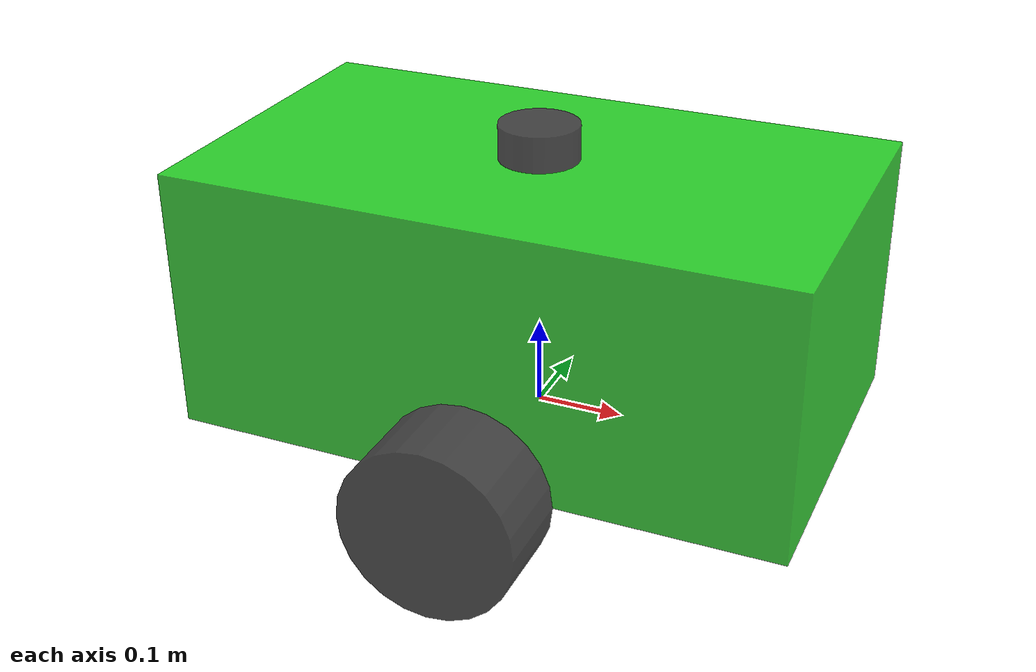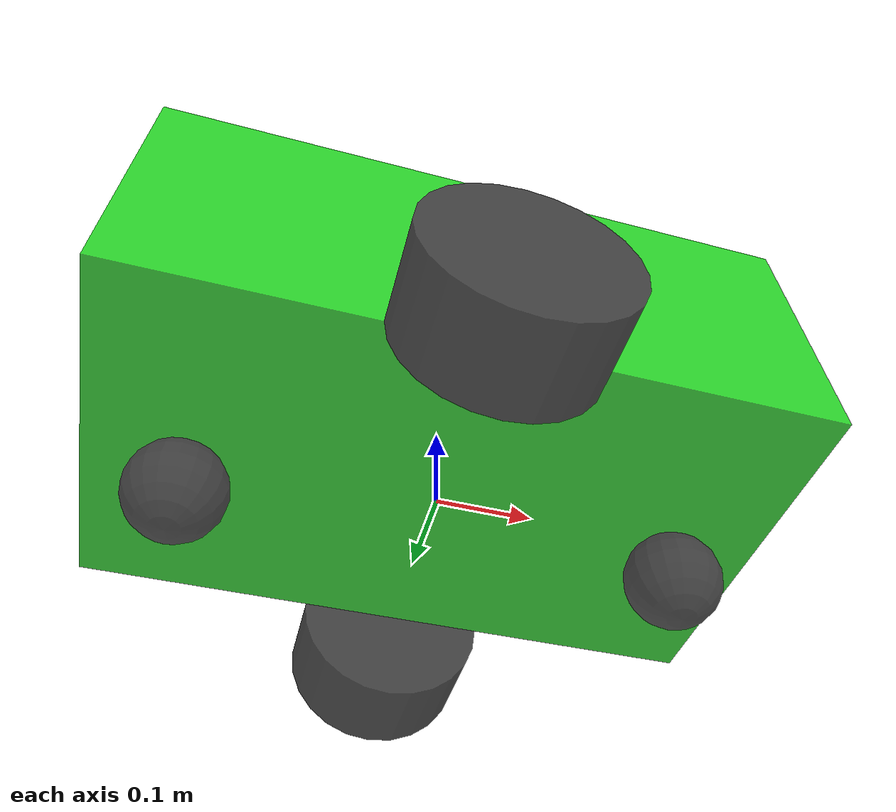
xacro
<?xml version="1.0"?>

<robot name="robot" xmlns:xacro="http://www.ros.org/wiki/xacro">

    <!-- Constants -->
    <xacro:property name="PI" value="3.1415926535897931"/>

    <!-- Dummy inertia -->
    <xacro:property name="dummy_inertia"                value="1e-09"/>

    <!-- Classic parameters -->
    <xacro:property name="body_mass"    value="10"/>
    <xacro:property name="body_lenght"  value="0.7"/>
    <xacro:property name="body_width"   value="0.4"/>
    <xacro:property name="body_height"  value="0.3"/>

    <!-- Front wheel parameters -->
    <xacro:property name="front_wheel_mass"     value="0.001"/>
    <xacro:property name="front_wheel_radius"   value="0.05"/>

    <!-- Rear wheel parameters -->
    <xacro:property name="rear_wheel_mass"      value="0.001"/>
    <xacro:property name="rear_wheel_radius"    value="0.05"/>

    <!-- Control wheels parameters -->
    <xacro:property name="control_wheel_mass"   value="2"/>
    <xacro:property name="control_wheel_radius" value="0.1"/>
    <xacro:property name="control_wheel_lenght" value="0.1"/>

    <!-- Frame position and orientation -->
    <xacro:property name="right_wheel_frame_position"       value="0 ${-body_width/2 - control_wheel_lenght/2} 0"/>
    <xacro:property name="right_wheel_frame_orientation"    value="${-PI/2} 0 0"/>
    <xacro:property name="left_wheel_frame_position"        value="0 ${body_width/2 + control_wheel_lenght/2} 0"/>
    <xacro:property name="left_wheel_frame_orientation"     value="${-PI/2} 0 0"/>
    <xacro:property name="front_wheel_frame_position"       value="${body_lenght/2 - 2 * front_wheel_radius} 0 ${-front_wheel_radius}"/>
    <xacro:property name="front_wheel_frame_orientation"    value="0 0 0"/>
    <xacro:property name="rear_wheel_frame_position"        value="${-body_lenght/2 + 2 * rear_wheel_radius} 0 ${-rear_wheel_radius}"/>
    <xacro:property name="rear_wheel_frame_orientation"     value="0 0 0"/>
    <xacro:property name="laser_frame_position"             value="0 0 ${body_height}"/>
    <xacro:property name="laser_frame_orientation"          value="0 0 0"/>
    <xacro:property name="imu_frame_position"               value="0 0 ${body_height/2}"/>
    <xacro:property name="imu_frame_orientation"            value="0 0 0"/>

    <!-- Import Rviz colors -->
    <xacro:include filename="$(find robot_pkg)/models/materials.xacro"/>

    <!-- Import Gazebo customization elemets -->
    <xacro:include filename="$(find robot_pkg)/models/robot_description.gazebo"/>

    <!-- Import laser sensor -->
    <xacro:include filename="$(find robot_pkg)/models/sensors/hokuyo.urdf.xacro"/>

    <!-- Chassis Link -->
    <link name="base_link">
        <collision>
            <origin xyz="0 0 ${body_height/2}" rpy="0 0 0"/>
            <geometry>
                <box size="${body_lenght} ${body_width} ${body_height}"/>
            </geometry>
        </collision>

        <visual>
            <origin xyz="0 0 ${body_height/2}" rpy="0 0 0"/>
            <geometry>
                <box size="${body_lenght} ${body_width} ${body_height}"/>
            </geometry>
            <material name="green"/>
        </visual>

        <inertial>
            <origin xyz="0 0 ${body_height/2}" rpy="0 0 0"/>
            <mass value="${body_mass}"/>
            <inertia
                ixx="${body_mass / 12 * (body_width*body_width + body_height*body_height)}" ixy="0.0" ixz="0.0"
                iyy="${body_mass / 12 * (body_height*body_height + body_lenght*body_lenght)}" iyz="0.0"
                izz="${body_mass / 12 * (body_lenght*body_lenght + body_width*body_width)}"/>
        </inertial>
    </link>

    <!-- IMU Link -->
    <link name="imu_link">
        <inertial>
        <mass value="0.001"/>
        <origin xyz="0 0 0" rpy="0 0 0"/>
        <inertia ixx="${dummy_inertia}" ixy="0.0" ixz="0.0" iyy="${dummy_inertia}" iyz="0.0" izz="${dummy_inertia}"/>
        </inertial>
    </link>
    <joint name="imu_joint" type="fixed">
        <parent link="base_link" />
        <child link="imu_link" />
        <origin xyz="${imu_frame_position}" rpy="${imu_frame_orientation}"/>
    </joint>

    <!-- Right wheel joint -->
    <joint name="right_wheel_joint" type="continuous">
        <parent link="base_link"/>
        <child link="right_wheel"/>
        <origin xyz="${right_wheel_frame_position}" rpy="${right_wheel_frame_orientation}"/>
        <axis xyz="0 0 1"/>
        <dynamics damping="0.7"/>
    </joint>

    <!-- Right wheel link -->
    <link name="right_wheel">
        <collision>
            <origin xyz="0 0 0" rpy="0 0 0"/>
            <geometry>
                <cylinder length="${control_wheel_lenght}" radius="${control_wheel_radius}"/>
            </geometry>
        </collision>

        <visual>
            <origin xyz="0 0 0" rpy="0 0 0"/>
            <geometry>
                <cylinder length="${control_wheel_lenght}" radius="${control_wheel_radius}"/>
            </geometry>
            <material name="black"/>
        </visual>

        <inertial>
            <origin xyz="0 0 0" rpy="0 0 0"/>
            <mass value="${control_wheel_mass}"/>
            <inertia
                ixx="${control_wheel_mass / 12 * (3 * control_wheel_radius*control_wheel_radius + control_wheel_lenght*control_wheel_lenght)}" ixy="0.0" ixz="0.0"
                iyy="${control_wheel_mass / 12 * (3 * control_wheel_radius*control_wheel_radius + control_wheel_lenght*control_wheel_lenght)}" iyz="0.0"
                izz="${control_wheel_mass /  2 * (control_wheel_radius*control_wheel_radius)}"/>
        </inertial>
    </link>

    <!-- Left wheel joint -->
    <joint name="left_wheel_joint" type="continuous">
        <parent link="base_link"/>
        <child link="left_wheel"/>
        <origin xyz="${left_wheel_frame_position}" rpy="${left_wheel_frame_orientation}"/>
        <axis xyz="0 0 1"/>
        <dynamics damping="0.7"/>
    </joint>

    <!-- Left wheel link -->
    <link name="left_wheel">
        <collision>
            <origin xyz="0 0 0" rpy="0 0 0"/>
            <geometry>
                <cylinder length="${control_wheel_lenght}" radius="${control_wheel_radius}"/>
            </geometry>
        </collision>

        <visual>
            <origin xyz="0 0 0" rpy="0 0 0"/>
            <geometry>
                <cylinder length="${control_wheel_lenght}" radius="${control_wheel_radius}"/>
            </geometry>
            <material name="black"/>
        </visual>

        <inertial>
            <origin xyz="0 0 0" rpy="0 0 0"/>
            <mass value="${control_wheel_mass}"/>
            <inertia
                ixx="${control_wheel_mass / 12 * (3 * control_wheel_radius*control_wheel_radius + control_wheel_lenght*control_wheel_lenght)}" ixy="0.0" ixz="0.0"
                iyy="${control_wheel_mass / 12 * (3 * control_wheel_radius*control_wheel_radius + control_wheel_lenght*control_wheel_lenght)}" iyz="0.0"
                izz="${control_wheel_mass /  2 * (control_wheel_radius*control_wheel_radius)}"/>
        </inertial>
    </link>

    <!-- Rear wheel joint -->
    <joint name="rear_wheel_joint" type="fixed">
        <parent link="base_link"/>
        <child link="rear_wheel"/>
        <origin xyz="${rear_wheel_frame_position}" rpy="${rear_wheel_frame_orientation}"/>
    </joint>

    <!-- Rear wheel link -->
    <link name="rear_wheel">
        <collision>
            <origin xyz="0 0 0" rpy="0 0 0"/>
            <geometry>
                <sphere radius="${rear_wheel_radius}"/>
            </geometry>
        </collision>

        <visual>
            <origin xyz="0 0 0" rpy="0 0 0"/>
            <geometry>
                <sphere radius="${rear_wheel_radius}"/>
            </geometry>
            <material name="black"/>
        </visual>

        <inertial>
            <origin xyz="0 0 0" rpy="0 0 0"/>
            <mass value="${rear_wheel_mass}"/>
            <inertia
                ixx="${2 * rear_wheel_mass * rear_wheel_radius * rear_wheel_radius / 5}" ixy="0.0" ixz="0.0"
                iyy="${2 * rear_wheel_mass * rear_wheel_radius * rear_wheel_radius / 5}" iyz="0.0"
                izz="${2 * rear_wheel_mass * rear_wheel_radius * rear_wheel_radius / 5}"/>
        </inertial>
    </link>

    <!-- Front wheel joint -->
    <joint name="front_wheel_joint" type="fixed">
        <parent link="base_link"/>
        <child link="front_wheel"/>
        <origin xyz="${front_wheel_frame_position}" rpy="${front_wheel_frame_orientation}"/>
    </joint>

    <!-- Front wheel link -->
    <link name="front_wheel">
        <collision>
            <origin xyz="0 0 0" rpy="0 0 0"/>
            <geometry>
                <sphere radius="${front_wheel_radius}"/>
            </geometry>
        </collision>

        <visual>
            <origin xyz="0 0 0" rpy="0 0 0"/>
            <geometry>
                <sphere radius="${front_wheel_radius}"/>
            </geometry>
            <material name="black"/>
        </visual>

        <inertial>
            <origin xyz="0 0 0" rpy="0 0 0"/>
            <mass value="${front_wheel_mass}"/>
            <inertia
                ixx="${2 * front_wheel_mass * front_wheel_radius * front_wheel_radius / 5}" ixy="0.0" ixz="0.0"
                iyy="${2 * front_wheel_mass * front_wheel_radius * front_wheel_radius / 5}" iyz="0.0"
                izz="${2 * front_wheel_mass * front_wheel_radius * front_wheel_radius / 5}"/>
        </inertial>
    </link>

    <!-- Laser link -->
    <xacro:hokuyo_laser xyz="0 0 ${body_height + 0.02}"
        rpy=" 0 0 0"
        parent="base_link">
    </xacro:hokuyo_laser>

    <!-- Transmission at joints-->
    <transmission name="right_wheel_trans">
        <type>transmission_interface/SimpleTransmission</type>
        <joint name="right_wheel_joint">
            <hardwareInterface>hardware_interface/EffortJointInterface</hardwareInterface>
        </joint>
        <actuator name="right_wheel_motor">
            <hardwareInterface>hardware_interface/EffortJointInterface</hardwareInterface>
            <mechanicalReduction></mechanicalReduction>
        </actuator>
    </transmission>

    <transmission name="left_wheel_trans">
        <type>transmission_interface/SimpleTransmission</type>
        <joint name="left_wheel_joint">
            <hardwareInterface>hardware_interface/EffortJointInterface</hardwareInterface>
        </joint>
        <actuator name="left_wheel_motor">
            <hardwareInterface>hardware_interface/EffortJointInterface</hardwareInterface>
            <mechanicalReduction></mechanicalReduction>
        </actuator>
    </transmission>

    <!-- Gazebo differential drive plugin -->
    <gazebo>
        <plugin name="differential_drive_controller" filename="libgazebo_ros_diff_drive.so">
            <robotNamespace>/$(arg namespace)</robotNamespace>
            <alwaysOn>true</alwaysOn>
            <legacyMode>false</legacyMode>
            <updateRate>50</updateRate>
            <leftJoint>left_wheel_joint</leftJoint>
            <rightJoint>right_wheel_joint</rightJoint>
            <wheelSeparation>${body_width + control_wheel_lenght}</wheelSeparation>
            <wheelDiameter>${2 * control_wheel_radius}</wheelDiameter>
            <wheelTorque>10</wheelTorque>
            <commandTopic>cmd_vel</commandTopic>
            <odometryTopic>odom</odometryTopic>
            <odometryFrame>$(arg namespace)/odom</odometryFrame>
            <robotBaseFrame>$(arg namespace)/base_link</robotBaseFrame>
            <publishWheelTF>false</publishWheelTF>
            <publishOdomTF>true</publishOdomTF>
            <publishWheelJointState>true</publishWheelJointState>
            <wheelAcceleration>0</wheelAcceleration>
            <odometrySource>world</odometrySource>
            <wheelAcceleration>1</wheelAcceleration>
            <publishTf>1</publishTf>
            <rosDebugLevel>na</rosDebugLevel>
        </plugin>
    </gazebo>

</robot>

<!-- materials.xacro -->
<robot>

    <material name="black">
        <color rgba="0.1 0.1 0.1 0.8"/>
    </material>

    <material name="blue">
        <color rgba="0.0 0.0 0.8 0.8"/>
    </material>

    <material name="green">
        <color rgba="0.0 0.8 0.0 0.8"/>
    </material>

    <material name="grey">
        <color rgba="0.4 0.4 0.4 0.8"/>
    </material>

    <material name="orange">
        <color rgba="1 ${108/255} ${10/255} 0.8"/>
    </material>

    <material name="brown">
        <color rgba="${222/255} ${207/255} ${195/255} 0.8"/>
    </material>

    <material name="red">
        <color rgba="0.8 0.0 0.0 0.8"/>
    </material>

    <material name="white">
        <color rgba="1.0 1.0 1.0 0.8"/>
    </material>

</robot>

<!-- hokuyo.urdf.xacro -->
<robot xmlns:xacro="http://www.ros.org/wiki/xacro" name="hokuyo">

<xacro:macro name="hokuyo_laser" params="xyz rpy parent">
    <joint name="hokuyo_laser_joint" type="fixed">
        <axis xyz="0 0 1" />
        <origin xyz="${xyz}" rpy="${rpy}"/>
        <parent link="${parent}"/>
        <child link="hokuyo_laser_link"/>
    </joint>

    <link name="hokuyo_laser_link">
        <collision>
            <origin xyz="0 0 0" rpy="0 0 0"/>
            <geometry>
                <cylinder length="0.04" radius="0.045"/>
            </geometry>
        </collision>
        <visual>
            <origin xyz="0 0 0" rpy="0 0 0"/>
            <geometry>
                <cylinder length="0.04" radius="0.045"/>
            </geometry>
            <material name="black"/>
        </visual>
        <inertial>
            <mass value="1e-5" />
            <origin xyz="0 0 0" rpy="0 0 0"/>
            <inertia ixx="1e-6" ixy="0" ixz="0" iyy="1e-6" iyz="0" izz="1e-6" />
        </inertial>
    </link>

    <gazebo reference="hokuyo_laser_link">
        <gravity>true</gravity>
        <sensor type="ray" name="head_hokuyo_sensor">
            <pose>0 0 0 0 0 0</pose>
            <visualize>false</visualize>
            <update_rate>40</update_rate>
            <ray>
                <scan>
                    <horizontal>
                        <samples>360</samples>
                        <resolution>1</resolution>
                        <min_angle>-3.14159</min_angle>
                        <max_angle>3.14159</max_angle>
                    </horizontal>
                </scan>
                <range>
                    <min>0.2</min>
                    <max>20</max>
                    <resolution>0.025</resolution>
                </range>
                <noise>
                    <type>gaussian</type>
                    <mean>0.0</mean>
                    <stddev>0.0</stddev>
                </noise>
            </ray>
            <plugin name="gazebo_ros_head_hokuyo_controller" filename="libgazebo_ros_laser.so">
                <robotNamespace> /$(arg namespace) </robotNamespace>
                <topicName>laser_scan</topicName>
                <frameName>$(arg namespace)/hokuyo_laser_link</frameName>
            </plugin>
        </sensor>
    </gazebo>

</xacro:macro>

</robot>
